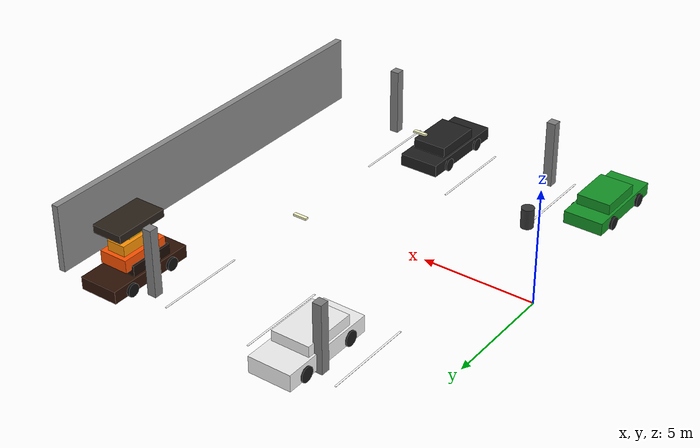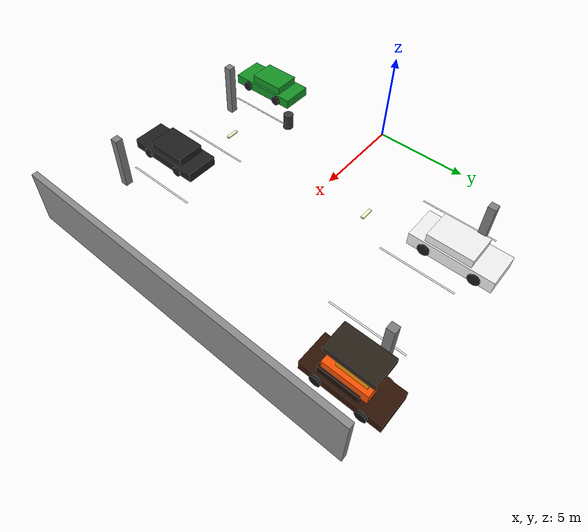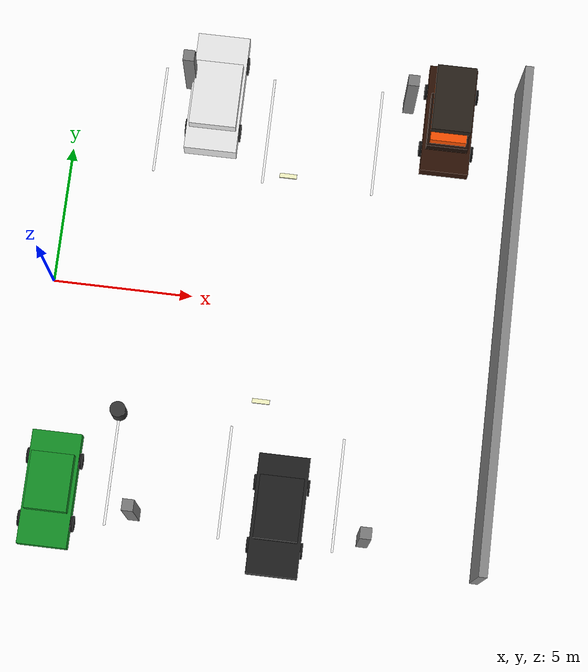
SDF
<sdf version="1.6">
 <world name="parking_garage">
  <model name="lineA4">
   <static>true</static>
   <pose>3 6.5 0.06 0 0 1.5708</pose>
   <link name="link">
    <visual name="vis">
     <geometry><box><size>4 0.08 0.01</size></box></geometry>
     <material><ambient>1 1 1 1</ambient><diffuse>1 1 1 1</diffuse></material>
    </visual>
   </link>
  </model>
  <model name="lineA5">
   <static>true</static>
   <pose>7 6.5 0.06 0 0 1.5708</pose>
   <link name="link">
    <visual name="vis">
     <geometry><box><size>4 0.08 0.01</size></box></geometry>
     <material><ambient>1 1 1 1</ambient><diffuse>1 1 1 1</diffuse></material>
    </visual>
   </link>
  </model>
  <model name="lineA6">
   <static>true</static>
   <pose>11 6.5 0.06 0 0 1.5708</pose>
   <link name="link">
    <visual name="vis">
     <geometry><box><size>4 0.08 0.01</size></box></geometry>
     <material><ambient>1 1 1 1</ambient><diffuse>1 1 1 1</diffuse></material>
    </visual>
   </link>
  </model>
  <model name="lineB4">
   <static>true</static>
   <pose>3 -6.5 0.06 0 0 1.5708</pose>
   <link name="link">
    <visual name="vis">
     <geometry><box><size>4 0.08 0.01</size></box></geometry>
     <material><ambient>1 1 1 1</ambient><diffuse>1 1 1 1</diffuse></material>
    </visual>
   </link>
  </model>
  <model name="lineB5">
   <static>true</static>
   <pose>7 -6.5 0.06 0 0 1.5708</pose>
   <link name="link">
    <visual name="vis">
     <geometry><box><size>4 0.08 0.01</size></box></geometry>
     <material><ambient>1 1 1 1</ambient><diffuse>1 1 1 1</diffuse></material>
    </visual>
   </link>
  </model>
  <model name="lineB6">
   <static>true</static>
   <pose>11 -6.5 0.06 0 0 1.5708</pose>
   <link name="link">
    <visual name="vis">
     <geometry><box><size>4 0.08 0.01</size></box></geometry>
     <material><ambient>1 1 1 1</ambient><diffuse>1 1 1 1</diffuse></material>
    </visual>
   </link>
  </model>
  <model name="wall_east">
   <static>true</static>
   <pose>16 0 1.5 0 0 0</pose>
   <link name="link">
    <collision name="col"><geometry><box><size>0.3 18 3</size></box></geometry></collision>
    <visual name="vis">
     <geometry><box><size>0.3 18 3</size></box></geometry>
     <material><ambient>0.55 0.55 0.55 1</ambient><diffuse>0.55 0.55 0.55 1</diffuse></material>
    </visual>
   </link>
  </model>
  <model name="pillar_A3">
   <static>true</static>
   <pose>4 8 1.5 0 0 0</pose>
   <link name="link">
    <collision name="col"><geometry><box><size>0.4 0.4 3</size></box></geometry></collision>
    <visual name="vis">
     <geometry><box><size>0.4 0.4 3</size></box></geometry>
     <material><ambient>0.5 0.5 0.5 1</ambient><diffuse>0.5 0.5 0.5 1</diffuse></material>
    </visual>
   </link>
  </model>
  <model name="pillar_A4">
   <static>true</static>
   <pose>12 8 1.5 0 0 0</pose>
   <link name="link">
    <collision name="col"><geometry><box><size>0.4 0.4 3</size></box></geometry></collision>
    <visual name="vis">
     <geometry><box><size>0.4 0.4 3</size></box></geometry>
     <material><ambient>0.5 0.5 0.5 1</ambient><diffuse>0.5 0.5 0.5 1</diffuse></material>
    </visual>
   </link>
  </model>
  <model name="pillar_B3">
   <static>true</static>
   <pose>4 -8 1.5 0 0 0</pose>
   <link name="link">
    <collision name="col"><geometry><box><size>0.4 0.4 3</size></box></geometry></collision>
    <visual name="vis">
     <geometry><box><size>0.4 0.4 3</size></box></geometry>
     <material><ambient>0.5 0.5 0.5 1</ambient><diffuse>0.5 0.5 0.5 1</diffuse></material>
    </visual>
   </link>
  </model>
  <model name="pillar_B4">
   <static>true</static>
   <pose>12 -8 1.5 0 0 0</pose>
   <link name="link">
    <collision name="col"><geometry><box><size>0.4 0.4 3</size></box></geometry></collision>
    <visual name="vis">
     <geometry><box><size>0.4 0.4 3</size></box></geometry>
     <material><ambient>0.5 0.5 0.5 1</ambient><diffuse>0.5 0.5 0.5 1</diffuse></material>
    </visual>
   </link>
  </model>
  <model name="lamp3">
   <static>true</static>
   <pose>8 4 2.95 0 0 0</pose>
   <link name="link">
    <visual name="vis">
     <geometry><box><size>0.6 0.15 0.08</size></box></geometry>
     <material>
      <ambient>1 1 0.8 1</ambient>
      <diffuse>1 1 0.8 1</diffuse>
      <emissive>0.8 0.8 0.5 1</emissive>
     </material>
    </visual>
   </link>
  </model>
  <model name="lamp6">
   <static>true</static>
   <pose>8 -4 2.95 0 0 0</pose>
   <link name="link">
    <visual name="vis">
     <geometry><box><size>0.6 0.15 0.08</size></box></geometry>
     <material>
      <ambient>1 1 0.8 1</ambient>
      <diffuse>1 1 0.8 1</diffuse>
      <emissive>0.8 0.8 0.5 1</emissive>
     </material>
    </visual>
   </link>
  </model>
  <model name="car_A5">
   <static>true</static>
   <pose>5 7.5 0 0 0 1.5708</pose>
   <link name="body">
    <pose>0 0 0.45 0 0 0</pose>
    <collision name="col"><geometry><box><size>4.4 1.9 1.0</size></box></geometry></collision>
    <visual name="vis">
     <geometry><box><size>4.4 1.9 0.72</size></box></geometry>
     <material>
      <ambient>0.9 0.9 0.9 1</ambient>
      <diffuse>0.95 0.95 0.95 1</diffuse>
      <specular>0.6 0.6 0.6 1</specular>
     </material>
    </visual>
   </link>
   <link name="roof">
    <pose>-0.2 0 1.02 0 0 0</pose>
    <visual name="vis">
     <geometry><box><size>2.4 1.7 0.5</size></box></geometry>
     <material><ambient>0.9 0.9 0.9 1</ambient><diffuse>0.95 0.95 0.95 1</diffuse></material>
    </visual>
   </link>
   <link name="wFL">
    <pose>1.3 0.9 0.32 1.5708 0 0</pose>
    <visual name="vis">
     <geometry><cylinder><radius>0.32</radius><length>0.22</length></cylinder></geometry>
     <material><ambient>0.08 0.08 0.08 1</ambient><diffuse>0.1 0.1 0.1 1</diffuse></material>
    </visual>
   </link>
   <link name="wFR">
    <pose>1.3 -0.9 0.32 1.5708 0 0</pose>
    <visual name="vis">
     <geometry><cylinder><radius>0.32</radius><length>0.22</length></cylinder></geometry>
     <material><ambient>0.08 0.08 0.08 1</ambient><diffuse>0.1 0.1 0.1 1</diffuse></material>
    </visual>
   </link>
   <link name="wRL">
    <pose>-1.3 0.9 0.32 1.5708 0 0</pose>
    <visual name="vis">
     <geometry><cylinder><radius>0.32</radius><length>0.22</length></cylinder></geometry>
     <material><ambient>0.08 0.08 0.08 1</ambient><diffuse>0.1 0.1 0.1 1</diffuse></material>
    </visual>
   </link>
   <link name="wRR">
    <pose>-1.3 -0.9 0.32 1.5708 0 0</pose>
    <visual name="vis">
     <geometry><cylinder><radius>0.32</radius><length>0.22</length></cylinder></geometry>
     <material><ambient>0.08 0.08 0.08 1</ambient><diffuse>0.1 0.1 0.1 1</diffuse></material>
    </visual>
   </link>
   <joint name="body_to_roof" type="fixed"><parent>body</parent><child>roof</child></joint>
   <joint name="body_to_wFL" type="fixed"><parent>body</parent><child>wFL</child></joint>
   <joint name="body_to_wFR" type="fixed"><parent>body</parent><child>wFR</child></joint>
   <joint name="body_to_wRL" type="fixed"><parent>body</parent><child>wRL</child></joint>
   <joint name="body_to_wRR" type="fixed"><parent>body</parent><child>wRR</child></joint>
  </model>
  <model name="car_B4">
   <static>true</static>
   <pose>1 -7.5 0 0 0 -1.5708</pose>
   <link name="body">
    <pose>0 0 0.38 0 0 0</pose>
    <collision name="col"><geometry><box><size>4.0 1.75 1.0</size></box></geometry></collision>
    <visual name="vis">
     <geometry><box><size>4.0 1.75 0.55</size></box></geometry>
     <material>
      <ambient>0.05 0.48 0.1 1</ambient>
      <diffuse>0.08 0.58 0.15 1</diffuse>
      <specular>0.4 0.4 0.4 1</specular>
     </material>
    </visual>
   </link>
   <link name="roof">
    <pose>-0.2 0 0.88 0 0 0</pose>
    <visual name="vis">
     <geometry><box><size>2.0 1.5 0.45</size></box></geometry>
     <material><ambient>0.05 0.48 0.1 1</ambient><diffuse>0.08 0.58 0.15 1</diffuse></material>
    </visual>
   </link>
   <link name="wFL">
    <pose>1.1 0.88 0.28 1.5708 0 0</pose>
    <visual name="vis">
     <geometry><cylinder><radius>0.28</radius><length>0.2</length></cylinder></geometry>
     <material><ambient>0.08 0.08 0.08 1</ambient><diffuse>0.1 0.1 0.1 1</diffuse></material>
    </visual>
   </link>
   <link name="wFR">
    <pose>1.1 -0.88 0.28 1.5708 0 0</pose>
    <visual name="vis">
     <geometry><cylinder><radius>0.28</radius><length>0.2</length></cylinder></geometry>
     <material><ambient>0.08 0.08 0.08 1</ambient><diffuse>0.1 0.1 0.1 1</diffuse></material>
    </visual>
   </link>
   <link name="wRL">
    <pose>-1.1 0.88 0.28 1.5708 0 0</pose>
    <visual name="vis">
     <geometry><cylinder><radius>0.28</radius><length>0.2</length></cylinder></geometry>
     <material><ambient>0.08 0.08 0.08 1</ambient><diffuse>0.1 0.1 0.1 1</diffuse></material>
    </visual>
   </link>
   <link name="wRR">
    <pose>-1.1 -0.88 0.28 1.5708 0 0</pose>
    <visual name="vis">
     <geometry><cylinder><radius>0.28</radius><length>0.2</length></cylinder></geometry>
     <material><ambient>0.08 0.08 0.08 1</ambient><diffuse>0.1 0.1 0.1 1</diffuse></material>
    </visual>
   </link>
   <joint name="body_to_roof" type="fixed"><parent>body</parent><child>roof</child></joint>
   <joint name="body_to_wFL" type="fixed"><parent>body</parent><child>wFL</child></joint>
   <joint name="body_to_wFR" type="fixed"><parent>body</parent><child>wFR</child></joint>
   <joint name="body_to_wRL" type="fixed"><parent>body</parent><child>wRL</child></joint>
   <joint name="body_to_wRR" type="fixed"><parent>body</parent><child>wRR</child></joint>
  </model>
  <model name="car_B6">
   <static>true</static>
   <pose>9 -7.5 0 0 0 -1.5708</pose>
   <link name="body">
    <pose>0 0 0.38 0 0 0</pose>
    <collision name="col"><geometry><box><size>4.2 1.8 1.0</size></box></geometry></collision>
    <visual name="vis">
     <geometry><box><size>4.2 1.8 0.55</size></box></geometry>
     <material>
      <ambient>0.08 0.08 0.08 1</ambient>
      <diffuse>0.12 0.12 0.12 1</diffuse>
      <specular>0.6 0.6 0.6 1</specular>
     </material>
    </visual>
   </link>
   <link name="roof">
    <pose>-0.2 0 0.88 0 0 0</pose>
    <visual name="vis">
     <geometry><box><size>2.2 1.55 0.45</size></box></geometry>
     <material><ambient>0.08 0.08 0.08 1</ambient><diffuse>0.12 0.12 0.12 1</diffuse></material>
    </visual>
   </link>
   <link name="wFL">
    <pose>1.1 0.88 0.28 1.5708 0 0</pose>
    <visual name="vis">
     <geometry><cylinder><radius>0.28</radius><length>0.2</length></cylinder></geometry>
     <material><ambient>0.08 0.08 0.08 1</ambient><diffuse>0.1 0.1 0.1 1</diffuse></material>
    </visual>
   </link>
   <link name="wFR">
    <pose>1.1 -0.88 0.28 1.5708 0 0</pose>
    <visual name="vis">
     <geometry><cylinder><radius>0.28</radius><length>0.2</length></cylinder></geometry>
     <material><ambient>0.08 0.08 0.08 1</ambient><diffuse>0.1 0.1 0.1 1</diffuse></material>
    </visual>
   </link>
   <link name="wRL">
    <pose>-1.1 0.88 0.28 1.5708 0 0</pose>
    <visual name="vis">
     <geometry><cylinder><radius>0.28</radius><length>0.2</length></cylinder></geometry>
     <material><ambient>0.08 0.08 0.08 1</ambient><diffuse>0.1 0.1 0.1 1</diffuse></material>
    </visual>
   </link>
   <link name="wRR">
    <pose>-1.1 -0.88 0.28 1.5708 0 0</pose>
    <visual name="vis">
     <geometry><cylinder><radius>0.28</radius><length>0.2</length></cylinder></geometry>
     <material><ambient>0.08 0.08 0.08 1</ambient><diffuse>0.1 0.1 0.1 1</diffuse></material>
    </visual>
   </link>
   <joint name="body_to_roof" type="fixed"><parent>body</parent><child>roof</child></joint>
   <joint name="body_to_wFL" type="fixed"><parent>body</parent><child>wFL</child></joint>
   <joint name="body_to_wFR" type="fixed"><parent>body</parent><child>wFR</child></joint>
   <joint name="body_to_wRL" type="fixed"><parent>body</parent><child>wRL</child></joint>
   <joint name="body_to_wRR" type="fixed"><parent>body</parent><child>wRR</child></joint>
  </model>
  <model name="car_A4_burning">
   <static>true</static>
   <pose>13.5 7.5 0 0 0 1.5708</pose>
   <link name="body">
    <pose>0 0 0.38 0 0 0</pose>
    <collision name="col"><geometry><box><size>4.0 1.75 1.0</size></box></geometry></collision>
    <visual name="vis">
     <geometry><box><size>4.0 1.75 0.55</size></box></geometry>
     <material>
      <ambient>0.12 0.05 0.01 1</ambient>
      <diffuse>0.18 0.07 0.02 1</diffuse>
      <emissive>0.45 0.12 0.0 1</emissive>
      <specular>0.0 0.0 0.0 1</specular>
     </material>
     <plugin filename="gz-sim-thermal-system" name="gz::sim::systems::Thermal">
      <temperature>673.0</temperature>
     </plugin>
    </visual>
   </link>
   <link name="roof">
    <pose>-0.2 0 0.88 0 0 0</pose>
    <visual name="vis">
     <geometry><box><size>2.0 1.5 0.45</size></box></geometry>
     <material>
      <ambient>0.07 0.03 0.01 1</ambient>
      <diffuse>0.1 0.04 0.01 1</diffuse>
      <emissive>0.25 0.07 0.0 1</emissive>
      <specular>0.0 0.0 0.0 1</specular>
     </material>
     <plugin filename="gz-sim-thermal-system" name="gz::sim::systems::Thermal">
      <temperature>623.0</temperature>
     </plugin>
    </visual>
   </link>
   <link name="wFL">
    <pose>1.1 0.88 0.28 1.5708 0 0</pose>
    <visual name="vis">
     <geometry><cylinder><radius>0.28</radius><length>0.2</length></cylinder></geometry>
     <material><ambient>0.04 0.04 0.04 1</ambient><diffuse>0.06 0.06 0.06 1</diffuse></material>
     <plugin filename="gz-sim-thermal-system" name="gz::sim::systems::Thermal">
      <temperature>473.0</temperature>
     </plugin>
    </visual>
   </link>
   <link name="wFR">
    <pose>1.1 -0.88 0.28 1.5708 0 0</pose>
    <visual name="vis">
     <geometry><cylinder><radius>0.28</radius><length>0.2</length></cylinder></geometry>
     <material><ambient>0.04 0.04 0.04 1</ambient><diffuse>0.06 0.06 0.06 1</diffuse></material>
     <plugin filename="gz-sim-thermal-system" name="gz::sim::systems::Thermal">
      <temperature>473.0</temperature>
     </plugin>
    </visual>
   </link>
   <link name="wRL">
    <pose>-1.1 0.88 0.28 1.5708 0 0</pose>
    <visual name="vis">
     <geometry><cylinder><radius>0.28</radius><length>0.2</length></cylinder></geometry>
     <material><ambient>0.04 0.04 0.04 1</ambient><diffuse>0.06 0.06 0.06 1</diffuse></material>
     <plugin filename="gz-sim-thermal-system" name="gz::sim::systems::Thermal">
      <temperature>473.0</temperature>
     </plugin>
    </visual>
   </link>
   <link name="wRR">
    <pose>-1.1 -0.88 0.28 1.5708 0 0</pose>
    <visual name="vis">
     <geometry><cylinder><radius>0.28</radius><length>0.2</length></cylinder></geometry>
     <material><ambient>0.04 0.04 0.04 1</ambient><diffuse>0.06 0.06 0.06 1</diffuse></material>
     <plugin filename="gz-sim-thermal-system" name="gz::sim::systems::Thermal">
      <temperature>473.0</temperature>
     </plugin>
    </visual>
   </link>
   <link name="flame_base">
    <pose>0 0 1.2 0 0 0</pose>
    <visual name="vis">
     <geometry><box><size>2.2 1.3 0.55</size></box></geometry>
     <material>
      <ambient>1.0 0.32 0.0 1</ambient>
      <diffuse>1.0 0.32 0.0 1</diffuse>
      <emissive>1.0 0.22 0.0 1</emissive>
     </material>
     <plugin filename="gz-sim-thermal-system" name="gz::sim::systems::Thermal">
      <temperature>973.0</temperature>
     </plugin>
    </visual>
   </link>
   <link name="flame_mid">
    <pose>0.15 0 1.65 0 0 0</pose>
    <visual name="vis">
     <geometry><box><size>1.5 0.85 0.55</size></box></geometry>
     <material>
      <ambient>1.0 0.58 0.02 1</ambient>
      <diffuse>1.0 0.58 0.02 1</diffuse>
      <emissive>1.0 0.45 0.0 1</emissive>
     </material>
     <plugin filename="gz-sim-thermal-system" name="gz::sim::systems::Thermal">
      <temperature>1173.0</temperature>
     </plugin>
    </visual>
   </link>
   <link name="flame_top">
    <pose>-0.05 0 2.05 0 0 0</pose>
    <visual name="vis">
     <geometry><box><size>0.85 0.48 0.5</size></box></geometry>
     <material>
      <ambient>1.0 0.88 0.1 1</ambient>
      <diffuse>1.0 0.88 0.1 1</diffuse>
      <emissive>1.0 0.78 0.05 1</emissive>
     </material>
     <plugin filename="gz-sim-thermal-system" name="gz::sim::systems::Thermal">
      <temperature>1373.0</temperature>
     </plugin>
    </visual>
   </link>
   <link name="smoke">
    <pose>0.1 0 2.55 0 0 0</pose>
    <visual name="vis">
     <geometry><box><size>2.4 1.4 0.35</size></box></geometry>
     <material>
      <ambient>0.13 0.11 0.09 1</ambient>
      <diffuse>0.16 0.13 0.1 1</diffuse>
      <emissive>0.06 0.05 0.04 1</emissive>
     </material>
     <plugin filename="gz-sim-thermal-system" name="gz::sim::systems::Thermal">
      <temperature>423.0</temperature>
     </plugin>
    </visual>
   </link>
   <joint name="j_roof" type="fixed"><parent>body</parent><child>roof</child></joint>
   <joint name="j_wFL" type="fixed"><parent>body</parent><child>wFL</child></joint>
   <joint name="j_wFR" type="fixed"><parent>body</parent><child>wFR</child></joint>
   <joint name="j_wRL" type="fixed"><parent>body</parent><child>wRL</child></joint>
   <joint name="j_wRR" type="fixed"><parent>body</parent><child>wRR</child></joint>
   <joint name="j_flame_base" type="fixed"><parent>body</parent><child>flame_base</child></joint>
   <joint name="j_flame_mid" type="fixed"><parent>body</parent><child>flame_mid</child></joint>
   <joint name="j_flame_top" type="fixed"><parent>body</parent><child>flame_top</child></joint>
   <joint name="j_smoke" type="fixed"><parent>body</parent><child>smoke</child></joint>
  </model>
  <model name="afvalbak_2">
   <static>true</static>
   <pose>3 -4.5 0 0 0 0</pose>
   <link name="link">
    <collision name="col">
     <geometry><cylinder><radius>0.28</radius><length>0.9</length></cylinder></geometry>
    </collision>
    <visual name="vis">
     <pose>0 0 0.45 0 0 0</pose>
     <geometry><cylinder><radius>0.28</radius><length>0.9</length></cylinder></geometry>
     <material>
      <ambient>0.18 0.18 0.18 1</ambient>
      <diffuse>0.22 0.22 0.22 1</diffuse>
      <specular>0.1 0.1 0.1 1</specular>
     </material>
    </visual>
   </link>
  </model>
 </world>
</sdf>
